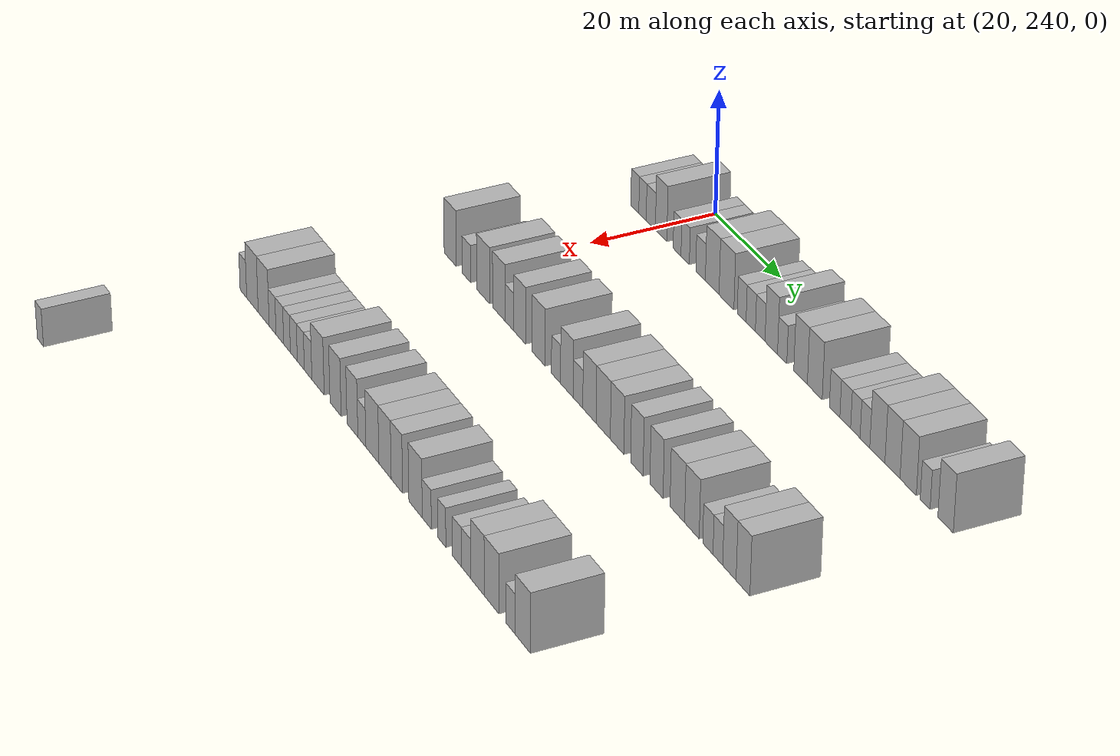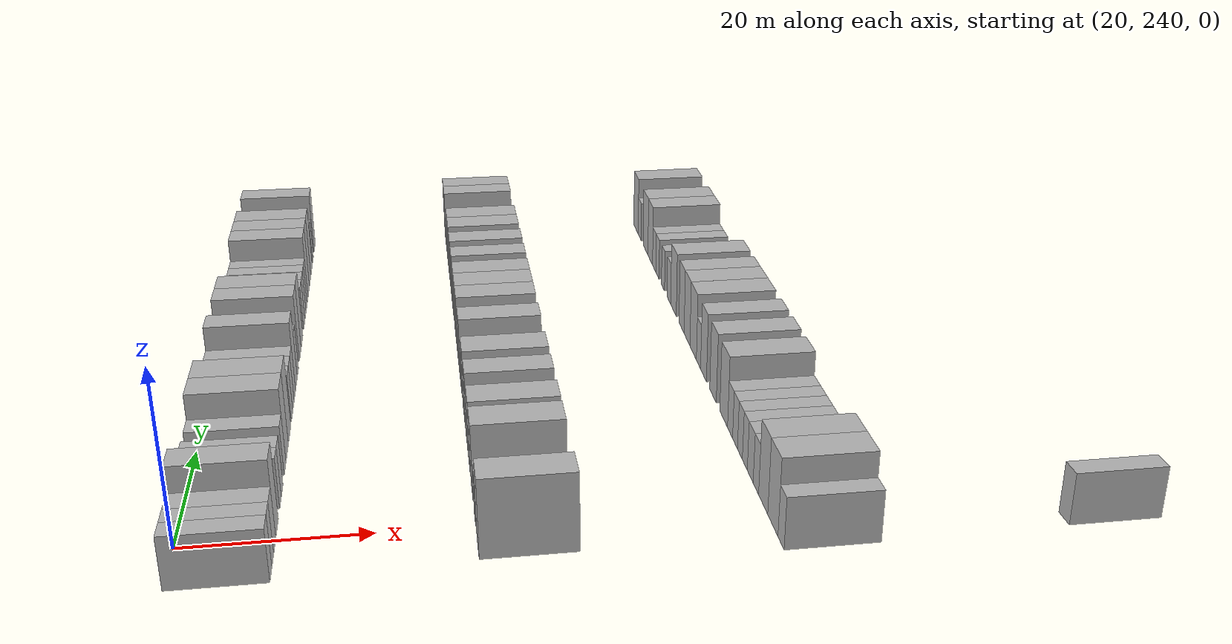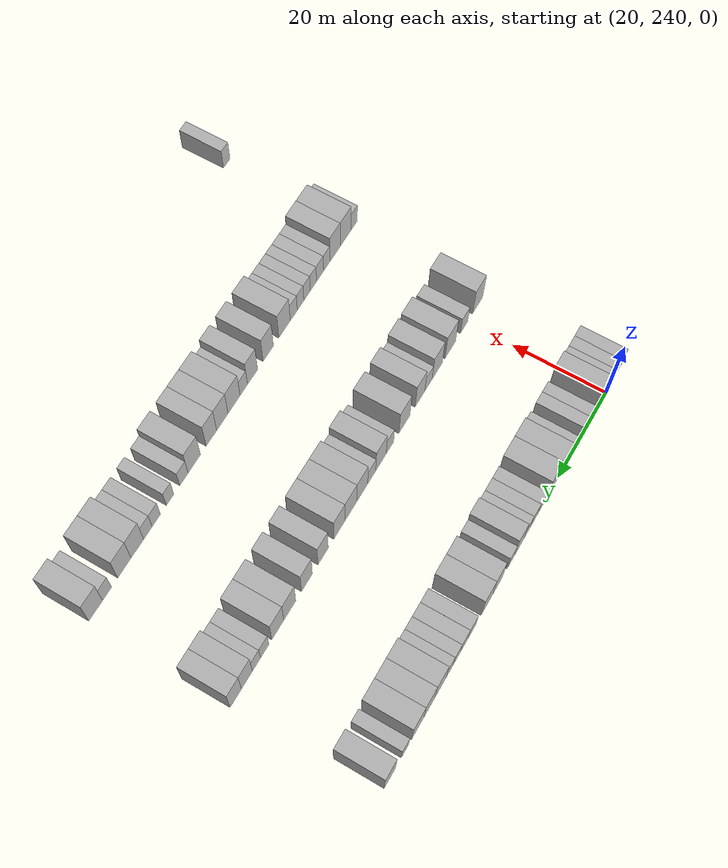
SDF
<sdf version="1.6">
 <world name="default">
  <model name="building_173">
   <static>1</static>
   <pose>25.0000 233.9214 0 0.000000 0.000000 0.000000</pose>
   <link name="link">
    <pose>0 0 3.00 0 0 0</pose>
    <collision name="collision"><geometry><box><size>10.0000 2.5750 6.0000</size></box></geometry></collision>
    <visual name="visual">
     <cast_shadows>0</cast_shadows>
     <geometry><box><size>10.0000 2.5750 6.0000</size></box></geometry>
     <material>
      <script>
       <uri>model://HANNAS_wall/materials/scripts</uri>
       <uri>model://HANNAS_wall/materials/textures</uri>
       <name>vrc/HANNAS_wall</name>
      </script>
     </material>
    </visual>
   </link>
  </model>
  <model name="building_174">
   <static>1</static>
   <pose>25.0000 236.4118 0 0.000000 0.000000 0.000000</pose>
   <link name="link">
    <pose>0 0 3.00 0 0 0</pose>
    <collision name="collision"><geometry><box><size>10.0000 2.4059 6.0000</size></box></geometry></collision>
    <visual name="visual">
     <cast_shadows>0</cast_shadows>
     <geometry><box><size>10.0000 2.4059 6.0000</size></box></geometry>
     <material>
      <script>
       <uri>model://HANNAS_wall/materials/scripts</uri>
       <uri>model://HANNAS_wall/materials/textures</uri>
       <name>vrc/HANNAS_wall</name>
      </script>
     </material>
    </visual>
   </link>
  </model>
  <model name="building_175">
   <static>1</static>
   <pose>25.0000 239.0922 0 0.000000 0.000000 0.000000</pose>
   <link name="link">
    <pose>0 0 3.00 0 0 0</pose>
    <collision name="collision"><geometry><box><size>10.0000 2.9547 6.0000</size></box></geometry></collision>
    <visual name="visual">
     <cast_shadows>0</cast_shadows>
     <geometry><box><size>10.0000 2.9547 6.0000</size></box></geometry>
     <material>
      <script>
       <uri>model://HANNAS_wall/materials/scripts</uri>
       <uri>model://HANNAS_wall/materials/textures</uri>
       <name>vrc/HANNAS_wall</name>
      </script>
     </material>
    </visual>
   </link>
  </model>
  <model name="building_176">
   <static>1</static>
   <pose>25.0000 242.3897 0 0.000000 0.000000 0.000000</pose>
   <link name="link">
    <pose>0 0 4.50 0 0 0</pose>
    <collision name="collision"><geometry><box><size>10.0000 3.6404 9.0000</size></box></geometry></collision>
    <visual name="visual">
     <cast_shadows>0</cast_shadows>
     <geometry><box><size>10.0000 3.6404 9.0000</size></box></geometry>
     <material>
      <script>
       <uri>model://HANNAS_wall/materials/scripts</uri>
       <uri>model://HANNAS_wall/materials/textures</uri>
       <name>vrc/HANNAS_wall</name>
      </script>
     </material>
    </visual>
   </link>
  </model>
  <model name="building_177">
   <static>1</static>
   <pose>25.0000 247.4412 0 0.000000 0.000000 0.000000</pose>
   <link name="link">
    <pose>0 0 3.00 0 0 0</pose>
    <collision name="collision"><geometry><box><size>10.0000 2.4626 6.0000</size></box></geometry></collision>
    <visual name="visual">
     <cast_shadows>0</cast_shadows>
     <geometry><box><size>10.0000 2.4626 6.0000</size></box></geometry>
     <material>
      <script>
       <uri>model://HANNAS_wall/materials/scripts</uri>
       <uri>model://HANNAS_wall/materials/textures</uri>
       <name>vrc/HANNAS_wall</name>
      </script>
     </material>
    </visual>
   </link>
  </model>
  <model name="building_178">
   <static>1</static>
   <pose>25.0000 249.9793 0 0.000000 0.000000 0.000000</pose>
   <link name="link">
    <pose>0 0 3.00 0 0 0</pose>
    <collision name="collision"><geometry><box><size>10.0000 2.6136 6.0000</size></box></geometry></collision>
    <visual name="visual">
     <cast_shadows>0</cast_shadows>
     <geometry><box><size>10.0000 2.6136 6.0000</size></box></geometry>
     <material>
      <script>
       <uri>model://HANNAS_wall/materials/scripts</uri>
       <uri>model://HANNAS_wall/materials/textures</uri>
       <name>vrc/HANNAS_wall</name>
      </script>
     </material>
    </visual>
   </link>
  </model>
  <model name="building_179">
   <static>1</static>
   <pose>25.0000 254.7602 0 0.000000 0.000000 0.000000</pose>
   <link name="link">
    <pose>0 0 3.00 0 0 0</pose>
    <collision name="collision"><geometry><box><size>10.0000 2.9482 6.0000</size></box></geometry></collision>
    <visual name="visual">
     <cast_shadows>0</cast_shadows>
     <geometry><box><size>10.0000 2.9482 6.0000</size></box></geometry>
     <material>
      <script>
       <uri>model://HANNAS_wall/materials/scripts</uri>
       <uri>model://HANNAS_wall/materials/textures</uri>
       <name>vrc/HANNAS_wall</name>
      </script>
     </material>
    </visual>
   </link>
  </model>
  <model name="building_180">
   <static>1</static>
   <pose>25.0000 258.3312 0 0.000000 0.000000 0.000000</pose>
   <link name="link">
    <pose>0 0 4.50 0 0 0</pose>
    <collision name="collision"><geometry><box><size>10.0000 4.1937 9.0000</size></box></geometry></collision>
    <visual name="visual">
     <cast_shadows>0</cast_shadows>
     <geometry><box><size>10.0000 4.1937 9.0000</size></box></geometry>
     <material>
      <script>
       <uri>model://HANNAS_wall/materials/scripts</uri>
       <uri>model://HANNAS_wall/materials/textures</uri>
       <name>vrc/HANNAS_wall</name>
      </script>
     </material>
    </visual>
   </link>
  </model>
  <model name="building_181">
   <static>1</static>
   <pose>25.0000 262.6746 0 0.000000 0.000000 0.000000</pose>
   <link name="link">
    <pose>0 0 4.50 0 0 0</pose>
    <collision name="collision"><geometry><box><size>10.0000 4.4932 9.0000</size></box></geometry></collision>
    <visual name="visual">
     <cast_shadows>0</cast_shadows>
     <geometry><box><size>10.0000 4.4932 9.0000</size></box></geometry>
     <material>
      <script>
       <uri>model://HANNAS_wall/materials/scripts</uri>
       <uri>model://HANNAS_wall/materials/textures</uri>
       <name>vrc/HANNAS_wall</name>
      </script>
     </material>
    </visual>
   </link>
  </model>
  <model name="building_182">
   <static>1</static>
   <pose>25.0000 267.2410 0 0.000000 0.000000 0.000000</pose>
   <link name="link">
    <pose>0 0 3.00 0 0 0</pose>
    <collision name="collision"><geometry><box><size>10.0000 2.6397 6.0000</size></box></geometry></collision>
    <visual name="visual">
     <cast_shadows>0</cast_shadows>
     <geometry><box><size>10.0000 2.6397 6.0000</size></box></geometry>
     <material>
      <script>
       <uri>model://HANNAS_wall/materials/scripts</uri>
       <uri>model://HANNAS_wall/materials/textures</uri>
       <name>vrc/HANNAS_wall</name>
      </script>
     </material>
    </visual>
   </link>
  </model>
  <model name="building_183">
   <static>1</static>
   <pose>25.0000 269.9422 0 0.000000 0.000000 0.000000</pose>
   <link name="link">
    <pose>0 0 3.00 0 0 0</pose>
    <collision name="collision"><geometry><box><size>10.0000 2.7627 6.0000</size></box></geometry></collision>
    <visual name="visual">
     <cast_shadows>0</cast_shadows>
     <geometry><box><size>10.0000 2.7627 6.0000</size></box></geometry>
     <material>
      <script>
       <uri>model://HANNAS_wall/materials/scripts</uri>
       <uri>model://HANNAS_wall/materials/textures</uri>
       <name>vrc/HANNAS_wall</name>
      </script>
     </material>
    </visual>
   </link>
  </model>
  <model name="building_184">
   <static>1</static>
   <pose>25.0000 272.7430 0 0.000000 0.000000 0.000000</pose>
   <link name="link">
    <pose>0 0 3.00 0 0 0</pose>
    <collision name="collision"><geometry><box><size>10.0000 2.8389 6.0000</size></box></geometry></collision>
    <visual name="visual">
     <cast_shadows>0</cast_shadows>
     <geometry><box><size>10.0000 2.8389 6.0000</size></box></geometry>
     <material>
      <script>
       <uri>model://HANNAS_wall/materials/scripts</uri>
       <uri>model://HANNAS_wall/materials/textures</uri>
       <name>vrc/HANNAS_wall</name>
      </script>
     </material>
    </visual>
   </link>
  </model>
  <model name="building_185">
   <static>1</static>
   <pose>25.0000 275.9863 0 0.000000 0.000000 0.000000</pose>
   <link name="link">
    <pose>0 0 4.50 0 0 0</pose>
    <collision name="collision"><geometry><box><size>10.0000 3.6476 9.0000</size></box></geometry></collision>
    <visual name="visual">
     <cast_shadows>0</cast_shadows>
     <geometry><box><size>10.0000 3.6476 9.0000</size></box></geometry>
     <material>
      <script>
       <uri>model://HANNAS_wall/materials/scripts</uri>
       <uri>model://HANNAS_wall/materials/textures</uri>
       <name>vrc/HANNAS_wall</name>
      </script>
     </material>
    </visual>
   </link>
  </model>
  <model name="building_186">
   <static>1</static>
   <pose>25.0000 279.1601 0 0.000000 0.000000 0.000000</pose>
   <link name="link">
    <pose>0 0 3.00 0 0 0</pose>
    <collision name="collision"><geometry><box><size>10.0000 2.7000 6.0000</size></box></geometry></collision>
    <visual name="visual">
     <cast_shadows>0</cast_shadows>
     <geometry><box><size>10.0000 2.7000 6.0000</size></box></geometry>
     <material>
      <script>
       <uri>model://HANNAS_wall/materials/scripts</uri>
       <uri>model://HANNAS_wall/materials/textures</uri>
       <name>vrc/HANNAS_wall</name>
      </script>
     </material>
    </visual>
   </link>
  </model>
  <model name="building_187">
   <static>1</static>
   <pose>25.0000 284.4467 0 0.000000 0.000000 0.000000</pose>
   <link name="link">
    <pose>0 0 4.50 0 0 0</pose>
    <collision name="collision"><geometry><box><size>10.0000 3.8732 9.0000</size></box></geometry></collision>
    <visual name="visual">
     <cast_shadows>0</cast_shadows>
     <geometry><box><size>10.0000 3.8732 9.0000</size></box></geometry>
     <material>
      <script>
       <uri>model://HANNAS_wall/materials/scripts</uri>
       <uri>model://HANNAS_wall/materials/textures</uri>
       <name>vrc/HANNAS_wall</name>
      </script>
     </material>
    </visual>
   </link>
  </model>
  <model name="building_188">
   <static>1</static>
   <pose>25.0000 288.4853 0 0.000000 0.000000 0.000000</pose>
   <link name="link">
    <pose>0 0 4.50 0 0 0</pose>
    <collision name="collision"><geometry><box><size>10.0000 4.2039 9.0000</size></box></geometry></collision>
    <visual name="visual">
     <cast_shadows>0</cast_shadows>
     <geometry><box><size>10.0000 4.2039 9.0000</size></box></geometry>
     <material>
      <script>
       <uri>model://HANNAS_wall/materials/scripts</uri>
       <uri>model://HANNAS_wall/materials/textures</uri>
       <name>vrc/HANNAS_wall</name>
      </script>
     </material>
    </visual>
   </link>
  </model>
  <model name="building_189">
   <static>1</static>
   <pose>25.0000 294.0512 0 0.000000 0.000000 0.000000</pose>
   <link name="link">
    <pose>0 0 3.00 0 0 0</pose>
    <collision name="collision"><geometry><box><size>10.0000 2.9280 6.0000</size></box></geometry></collision>
    <visual name="visual">
     <cast_shadows>0</cast_shadows>
     <geometry><box><size>10.0000 2.9280 6.0000</size></box></geometry>
     <material>
      <script>
       <uri>model://HANNAS_wall/materials/scripts</uri>
       <uri>model://HANNAS_wall/materials/textures</uri>
       <name>vrc/HANNAS_wall</name>
      </script>
     </material>
    </visual>
   </link>
  </model>
  <model name="building_190">
   <static>1</static>
   <pose>25.0000 296.9985 0 0.000000 0.000000 0.000000</pose>
   <link name="link">
    <pose>0 0 3.00 0 0 0</pose>
    <collision name="collision"><geometry><box><size>10.0000 2.9665 6.0000</size></box></geometry></collision>
    <visual name="visual">
     <cast_shadows>0</cast_shadows>
     <geometry><box><size>10.0000 2.9665 6.0000</size></box></geometry>
     <material>
      <script>
       <uri>model://HANNAS_wall/materials/scripts</uri>
       <uri>model://HANNAS_wall/materials/textures</uri>
       <name>vrc/HANNAS_wall</name>
      </script>
     </material>
    </visual>
   </link>
  </model>
  <model name="building_191">
   <static>1</static>
   <pose>25.0000 299.7755 0 0.000000 0.000000 0.000000</pose>
   <link name="link">
    <pose>0 0 3.00 0 0 0</pose>
    <collision name="collision"><geometry><box><size>10.0000 2.5875 6.0000</size></box></geometry></collision>
    <visual name="visual">
     <cast_shadows>0</cast_shadows>
     <geometry><box><size>10.0000 2.5875 6.0000</size></box></geometry>
     <material>
      <script>
       <uri>model://HANNAS_wall/materials/scripts</uri>
       <uri>model://HANNAS_wall/materials/textures</uri>
       <name>vrc/HANNAS_wall</name>
      </script>
     </material>
    </visual>
   </link>
  </model>
  <model name="building_192">
   <static>1</static>
   <pose>25.0000 302.3910 0 0.000000 0.000000 0.000000</pose>
   <link name="link">
    <pose>0 0 3.00 0 0 0</pose>
    <collision name="collision"><geometry><box><size>10.0000 2.6434 6.0000</size></box></geometry></collision>
    <visual name="visual">
     <cast_shadows>0</cast_shadows>
     <geometry><box><size>10.0000 2.6434 6.0000</size></box></geometry>
     <material>
      <script>
       <uri>model://HANNAS_wall/materials/scripts</uri>
       <uri>model://HANNAS_wall/materials/textures</uri>
       <name>vrc/HANNAS_wall</name>
      </script>
     </material>
    </visual>
   </link>
  </model>
  <model name="building_193">
   <static>1</static>
   <pose>25.0000 305.7496 0 0.000000 0.000000 0.000000</pose>
   <link name="link">
    <pose>0 0 4.50 0 0 0</pose>
    <collision name="collision"><geometry><box><size>10.0000 4.0739 9.0000</size></box></geometry></collision>
    <visual name="visual">
     <cast_shadows>0</cast_shadows>
     <geometry><box><size>10.0000 4.0739 9.0000</size></box></geometry>
     <material>
      <script>
       <uri>model://HANNAS_wall/materials/scripts</uri>
       <uri>model://HANNAS_wall/materials/textures</uri>
       <name>vrc/HANNAS_wall</name>
      </script>
     </material>
    </visual>
   </link>
  </model>
  <model name="building_194">
   <static>1</static>
   <pose>25.0000 309.8041 0 0.000000 0.000000 0.000000</pose>
   <link name="link">
    <pose>0 0 4.50 0 0 0</pose>
    <collision name="collision"><geometry><box><size>10.0000 4.0350 9.0000</size></box></geometry></collision>
    <visual name="visual">
     <cast_shadows>0</cast_shadows>
     <geometry><box><size>10.0000 4.0350 9.0000</size></box></geometry>
     <material>
      <script>
       <uri>model://HANNAS_wall/materials/scripts</uri>
       <uri>model://HANNAS_wall/materials/textures</uri>
       <name>vrc/HANNAS_wall</name>
      </script>
     </material>
    </visual>
   </link>
  </model>
  <model name="building_195">
   <static>1</static>
   <pose>25.0000 313.9695 0 0.000000 0.000000 0.000000</pose>
   <link name="link">
    <pose>0 0 4.50 0 0 0</pose>
    <collision name="collision"><geometry><box><size>10.0000 4.2958 9.0000</size></box></geometry></collision>
    <visual name="visual">
     <cast_shadows>0</cast_shadows>
     <geometry><box><size>10.0000 4.2958 9.0000</size></box></geometry>
     <material>
      <script>
       <uri>model://HANNAS_wall/materials/scripts</uri>
       <uri>model://HANNAS_wall/materials/textures</uri>
       <name>vrc/HANNAS_wall</name>
      </script>
     </material>
    </visual>
   </link>
  </model>
  <model name="building_196">
   <static>1</static>
   <pose>25.0000 318.4074 0 0.000000 0.000000 0.000000</pose>
   <link name="link">
    <pose>0 0 3.00 0 0 0</pose>
    <collision name="collision"><geometry><box><size>10.0000 2.5799 6.0000</size></box></geometry></collision>
    <visual name="visual">
     <cast_shadows>0</cast_shadows>
     <geometry><box><size>10.0000 2.5799 6.0000</size></box></geometry>
     <material>
      <script>
       <uri>model://HANNAS_wall/materials/scripts</uri>
       <uri>model://HANNAS_wall/materials/textures</uri>
       <name>vrc/HANNAS_wall</name>
      </script>
     </material>
    </visual>
   </link>
  </model>
  <model name="building_197">
   <static>1</static>
   <pose>25.0000 323.6763 0 0.000000 0.000000 0.000000</pose>
   <link name="link">
    <pose>0 0 4.50 0 0 0</pose>
    <collision name="collision"><geometry><box><size>10.0000 3.9580 9.0000</size></box></geometry></collision>
    <visual name="visual">
     <cast_shadows>0</cast_shadows>
     <geometry><box><size>10.0000 3.9580 9.0000</size></box></geometry>
     <material>
      <script>
       <uri>model://HANNAS_wall/materials/scripts</uri>
       <uri>model://HANNAS_wall/materials/textures</uri>
       <name>vrc/HANNAS_wall</name>
      </script>
     </material>
    </visual>
   </link>
  </model>
  <model name="building_398">
   <static>1</static>
   <pose>55.0000 235.8316 0 0.000000 0.000000 0.000000</pose>
   <link name="link">
    <pose>0 0 4.50 0 0 0</pose>
    <collision name="collision"><geometry><box><size>10.0000 4.1496 9.0000</size></box></geometry></collision>
    <visual name="visual">
     <cast_shadows>0</cast_shadows>
     <geometry><box><size>10.0000 4.1496 9.0000</size></box></geometry>
     <material>
      <script>
       <uri>model://HANNAS_wall/materials/scripts</uri>
       <uri>model://HANNAS_wall/materials/textures</uri>
       <name>vrc/HANNAS_wall</name>
      </script>
     </material>
    </visual>
   </link>
  </model>
  <model name="building_399">
   <static>1</static>
   <pose>55.0000 241.3835 0 0.000000 0.000000 0.000000</pose>
   <link name="link">
    <pose>0 0 3.00 0 0 0</pose>
    <collision name="collision"><geometry><box><size>10.0000 2.9542 6.0000</size></box></geometry></collision>
    <visual name="visual">
     <cast_shadows>0</cast_shadows>
     <geometry><box><size>10.0000 2.9542 6.0000</size></box></geometry>
     <material>
      <script>
       <uri>model://HANNAS_wall/materials/scripts</uri>
       <uri>model://HANNAS_wall/materials/textures</uri>
       <name>vrc/HANNAS_wall</name>
      </script>
     </material>
    </visual>
   </link>
  </model>
  <model name="building_400">
   <static>1</static>
   <pose>55.0000 247.0343 0 0.000000 0.000000 0.000000</pose>
   <link name="link">
    <pose>0 0 4.50 0 0 0</pose>
    <collision name="collision"><geometry><box><size>10.0000 4.3474 9.0000</size></box></geometry></collision>
    <visual name="visual">
     <cast_shadows>0</cast_shadows>
     <geometry><box><size>10.0000 4.3474 9.0000</size></box></geometry>
     <material>
      <script>
       <uri>model://HANNAS_wall/materials/scripts</uri>
       <uri>model://HANNAS_wall/materials/textures</uri>
       <name>vrc/HANNAS_wall</name>
      </script>
     </material>
    </visual>
   </link>
  </model>
  <model name="building_401">
   <static>1</static>
   <pose>55.0000 252.2536 0 0.000000 0.000000 0.000000</pose>
   <link name="link">
    <pose>0 0 4.50 0 0 0</pose>
    <collision name="collision"><geometry><box><size>10.0000 4.0912 9.0000</size></box></geometry></collision>
    <visual name="visual">
     <cast_shadows>0</cast_shadows>
     <geometry><box><size>10.0000 4.0912 9.0000</size></box></geometry>
     <material>
      <script>
       <uri>model://HANNAS_wall/materials/scripts</uri>
       <uri>model://HANNAS_wall/materials/textures</uri>
       <name>vrc/HANNAS_wall</name>
      </script>
     </material>
    </visual>
   </link>
  </model>
  <model name="building_402">
   <static>1</static>
   <pose>55.0000 255.7630 0 0.000000 0.000000 0.000000</pose>
   <link name="link">
    <pose>0 0 3.00 0 0 0</pose>
    <collision name="collision"><geometry><box><size>10.0000 2.9276 6.0000</size></box></geometry></collision>
    <visual name="visual">
     <cast_shadows>0</cast_shadows>
     <geometry><box><size>10.0000 2.9276 6.0000</size></box></geometry>
     <material>
      <script>
       <uri>model://HANNAS_wall/materials/scripts</uri>
       <uri>model://HANNAS_wall/materials/textures</uri>
       <name>vrc/HANNAS_wall</name>
      </script>
     </material>
    </visual>
   </link>
  </model>
  <model name="building_403">
   <static>1</static>
   <pose>55.0000 259.1118 0 0.000000 0.000000 0.000000</pose>
   <link name="link">
    <pose>0 0 4.50 0 0 0</pose>
    <collision name="collision"><geometry><box><size>10.0000 3.7700 9.0000</size></box></geometry></collision>
    <visual name="visual">
     <cast_shadows>0</cast_shadows>
     <geometry><box><size>10.0000 3.7700 9.0000</size></box></geometry>
     <material>
      <script>
       <uri>model://HANNAS_wall/materials/scripts</uri>
       <uri>model://HANNAS_wall/materials/textures</uri>
       <name>vrc/HANNAS_wall</name>
      </script>
     </material>
    </visual>
   </link>
  </model>
  <model name="building_404">
   <static>1</static>
   <pose>55.0000 265.1420 0 0.000000 0.000000 0.000000</pose>
   <link name="link">
    <pose>0 0 4.50 0 0 0</pose>
    <collision name="collision"><geometry><box><size>10.0000 4.2905 9.0000</size></box></geometry></collision>
    <visual name="visual">
     <cast_shadows>0</cast_shadows>
     <geometry><box><size>10.0000 4.2905 9.0000</size></box></geometry>
     <material>
      <script>
       <uri>model://HANNAS_wall/materials/scripts</uri>
       <uri>model://HANNAS_wall/materials/textures</uri>
       <name>vrc/HANNAS_wall</name>
      </script>
     </material>
    </visual>
   </link>
  </model>
  <model name="building_405">
   <static>1</static>
   <pose>55.0000 270.7178 0 0.000000 0.000000 0.000000</pose>
   <link name="link">
    <pose>0 0 3.00 0 0 0</pose>
    <collision name="collision"><geometry><box><size>10.0000 2.8611 6.0000</size></box></geometry></collision>
    <visual name="visual">
     <cast_shadows>0</cast_shadows>
     <geometry><box><size>10.0000 2.8611 6.0000</size></box></geometry>
     <material>
      <script>
       <uri>model://HANNAS_wall/materials/scripts</uri>
       <uri>model://HANNAS_wall/materials/textures</uri>
       <name>vrc/HANNAS_wall</name>
      </script>
     </material>
    </visual>
   </link>
  </model>
  <model name="building_406">
   <static>1</static>
   <pose>55.0000 274.1213 0 0.000000 0.000000 0.000000</pose>
   <link name="link">
    <pose>0 0 4.50 0 0 0</pose>
    <collision name="collision"><geometry><box><size>10.0000 3.9459 9.0000</size></box></geometry></collision>
    <visual name="visual">
     <cast_shadows>0</cast_shadows>
     <geometry><box><size>10.0000 3.9459 9.0000</size></box></geometry>
     <material>
      <script>
       <uri>model://HANNAS_wall/materials/scripts</uri>
       <uri>model://HANNAS_wall/materials/textures</uri>
       <name>vrc/HANNAS_wall</name>
      </script>
     </material>
    </visual>
   </link>
  </model>
  <model name="building_407">
   <static>1</static>
   <pose>55.0000 277.5830 0 0.000000 0.000000 0.000000</pose>
   <link name="link">
    <pose>0 0 3.00 0 0 0</pose>
    <collision name="collision"><geometry><box><size>10.0000 2.9775 6.0000</size></box></geometry></collision>
    <visual name="visual">
     <cast_shadows>0</cast_shadows>
     <geometry><box><size>10.0000 2.9775 6.0000</size></box></geometry>
     <material>
      <script>
       <uri>model://HANNAS_wall/materials/scripts</uri>
       <uri>model://HANNAS_wall/materials/textures</uri>
       <name>vrc/HANNAS_wall</name>
      </script>
     </material>
    </visual>
   </link>
  </model>
  <model name="building_408">
   <static>1</static>
   <pose>55.0000 281.1152 0 0.000000 0.000000 0.000000</pose>
   <link name="link">
    <pose>0 0 4.50 0 0 0</pose>
    <collision name="collision"><geometry><box><size>10.0000 4.0869 9.0000</size></box></geometry></collision>
    <visual name="visual">
     <cast_shadows>0</cast_shadows>
     <geometry><box><size>10.0000 4.0869 9.0000</size></box></geometry>
     <material>
      <script>
       <uri>model://HANNAS_wall/materials/scripts</uri>
       <uri>model://HANNAS_wall/materials/textures</uri>
       <name>vrc/HANNAS_wall</name>
      </script>
     </material>
    </visual>
   </link>
  </model>
  <model name="building_409">
   <static>1</static>
   <pose>55.0000 285.3110 0 0.000000 0.000000 0.000000</pose>
   <link name="link">
    <pose>0 0 4.50 0 0 0</pose>
    <collision name="collision"><geometry><box><size>10.0000 4.3048 9.0000</size></box></geometry></collision>
    <visual name="visual">
     <cast_shadows>0</cast_shadows>
     <geometry><box><size>10.0000 4.3048 9.0000</size></box></geometry>
     <material>
      <script>
       <uri>model://HANNAS_wall/materials/scripts</uri>
       <uri>model://HANNAS_wall/materials/textures</uri>
       <name>vrc/HANNAS_wall</name>
      </script>
     </material>
    </visual>
   </link>
  </model>
  <model name="building_410">
   <static>1</static>
   <pose>55.0000 289.4895 0 0.000000 0.000000 0.000000</pose>
   <link name="link">
    <pose>0 0 4.50 0 0 0</pose>
    <collision name="collision"><geometry><box><size>10.0000 4.0522 9.0000</size></box></geometry></collision>
    <visual name="visual">
     <cast_shadows>0</cast_shadows>
     <geometry><box><size>10.0000 4.0522 9.0000</size></box></geometry>
     <material>
      <script>
       <uri>model://HANNAS_wall/materials/scripts</uri>
       <uri>model://HANNAS_wall/materials/textures</uri>
       <name>vrc/HANNAS_wall</name>
      </script>
     </material>
    </visual>
   </link>
  </model>
  <model name="building_411">
   <static>1</static>
   <pose>55.0000 295.3524 0 0.000000 0.000000 0.000000</pose>
   <link name="link">
    <pose>0 0 4.50 0 0 0</pose>
    <collision name="collision"><geometry><box><size>10.0000 3.6736 9.0000</size></box></geometry></collision>
    <visual name="visual">
     <cast_shadows>0</cast_shadows>
     <geometry><box><size>10.0000 3.6736 9.0000</size></box></geometry>
     <material>
      <script>
       <uri>model://HANNAS_wall/materials/scripts</uri>
       <uri>model://HANNAS_wall/materials/textures</uri>
       <name>vrc/HANNAS_wall</name>
      </script>
     </material>
    </visual>
   </link>
  </model>
  <model name="building_412">
   <static>1</static>
   <pose>55.0000 301.0931 0 0.000000 0.000000 0.000000</pose>
   <link name="link">
    <pose>0 0 4.50 0 0 0</pose>
    <collision name="collision"><geometry><box><size>10.0000 3.8077 9.0000</size></box></geometry></collision>
    <visual name="visual">
     <cast_shadows>0</cast_shadows>
     <geometry><box><size>10.0000 3.8077 9.0000</size></box></geometry>
     <material>
      <script>
       <uri>model://HANNAS_wall/materials/scripts</uri>
       <uri>model://HANNAS_wall/materials/textures</uri>
       <name>vrc/HANNAS_wall</name>
      </script>
     </material>
    </visual>
   </link>
  </model>
  <model name="building_413">
   <static>1</static>
   <pose>55.0000 307.0705 0 0.000000 0.000000 0.000000</pose>
   <link name="link">
    <pose>0 0 4.50 0 0 0</pose>
    <collision name="collision"><geometry><box><size>10.0000 4.1471 9.0000</size></box></geometry></collision>
    <visual name="visual">
     <cast_shadows>0</cast_shadows>
     <geometry><box><size>10.0000 4.1471 9.0000</size></box></geometry>
     <material>
      <script>
       <uri>model://HANNAS_wall/materials/scripts</uri>
       <uri>model://HANNAS_wall/materials/textures</uri>
       <name>vrc/HANNAS_wall</name>
      </script>
     </material>
    </visual>
   </link>
  </model>
  <model name="building_414">
   <static>1</static>
   <pose>55.0000 311.1951 0 0.000000 0.000000 0.000000</pose>
   <link name="link">
    <pose>0 0 4.50 0 0 0</pose>
    <collision name="collision"><geometry><box><size>10.0000 4.1022 9.0000</size></box></geometry></collision>
    <visual name="visual">
     <cast_shadows>0</cast_shadows>
     <geometry><box><size>10.0000 4.1022 9.0000</size></box></geometry>
     <material>
      <script>
       <uri>model://HANNAS_wall/materials/scripts</uri>
       <uri>model://HANNAS_wall/materials/textures</uri>
       <name>vrc/HANNAS_wall</name>
      </script>
     </material>
    </visual>
   </link>
  </model>
  <model name="building_415">
   <static>1</static>
   <pose>55.0000 315.6761 0 0.000000 0.000000 0.000000</pose>
   <link name="link">
    <pose>0 0 3.00 0 0 0</pose>
    <collision name="collision"><geometry><box><size>10.0000 2.8598 6.0000</size></box></geometry></collision>
    <visual name="visual">
     <cast_shadows>0</cast_shadows>
     <geometry><box><size>10.0000 2.8598 6.0000</size></box></geometry>
     <material>
      <script>
       <uri>model://HANNAS_wall/materials/scripts</uri>
       <uri>model://HANNAS_wall/materials/textures</uri>
       <name>vrc/HANNAS_wall</name>
      </script>
     </material>
    </visual>
   </link>
  </model>
  <model name="building_416">
   <static>1</static>
   <pose>55.0000 318.4408 0 0.000000 0.000000 0.000000</pose>
   <link name="link">
    <pose>0 0 3.00 0 0 0</pose>
    <collision name="collision"><geometry><box><size>10.0000 2.6696 6.0000</size></box></geometry></collision>
    <visual name="visual">
     <cast_shadows>0</cast_shadows>
     <geometry><box><size>10.0000 2.6696 6.0000</size></box></geometry>
     <material>
      <script>
       <uri>model://HANNAS_wall/materials/scripts</uri>
       <uri>model://HANNAS_wall/materials/textures</uri>
       <name>vrc/HANNAS_wall</name>
      </script>
     </material>
    </visual>
   </link>
  </model>
  <model name="building_417">
   <static>1</static>
   <pose>55.0000 321.6118 0 0.000000 0.000000 0.000000</pose>
   <link name="link">
    <pose>0 0 4.50 0 0 0</pose>
    <collision name="collision"><geometry><box><size>10.0000 3.6724 9.0000</size></box></geometry></collision>
    <visual name="visual">
     <cast_shadows>0</cast_shadows>
     <geometry><box><size>10.0000 3.6724 9.0000</size></box></geometry>
     <material>
      <script>
       <uri>model://HANNAS_wall/materials/scripts</uri>
       <uri>model://HANNAS_wall/materials/textures</uri>
       <name>vrc/HANNAS_wall</name>
      </script>
     </material>
    </visual>
   </link>
  </model>
  <model name="building_418">
   <static>1</static>
   <pose>55.0000 325.3156 0 0.000000 0.000000 0.000000</pose>
   <link name="link">
    <pose>0 0 4.50 0 0 0</pose>
    <collision name="collision"><geometry><box><size>10.0000 3.7352 9.0000</size></box></geometry></collision>
    <visual name="visual">
     <cast_shadows>0</cast_shadows>
     <geometry><box><size>10.0000 3.7352 9.0000</size></box></geometry>
     <material>
      <script>
       <uri>model://HANNAS_wall/materials/scripts</uri>
       <uri>model://HANNAS_wall/materials/textures</uri>
       <name>vrc/HANNAS_wall</name>
      </script>
     </material>
    </visual>
   </link>
  </model>
  <model name="building_625">
   <static>1</static>
   <pose>85.0000 232.3609 0 0.000000 0.000000 0.000000</pose>
   <link name="link">
    <pose>0 0 3.00 0 0 0</pose>
    <collision name="collision"><geometry><box><size>10.0000 2.4837 6.0000</size></box></geometry></collision>
    <visual name="visual">
     <cast_shadows>0</cast_shadows>
     <geometry><box><size>10.0000 2.4837 6.0000</size></box></geometry>
     <material>
      <script>
       <uri>model://HANNAS_wall/materials/scripts</uri>
       <uri>model://HANNAS_wall/materials/textures</uri>
       <name>vrc/HANNAS_wall</name>
      </script>
     </material>
    </visual>
   </link>
  </model>
  <model name="building_626">
   <static>1</static>
   <pose>85.0000 235.7366 0 0.000000 0.000000 0.000000</pose>
   <link name="link">
    <pose>0 0 4.50 0 0 0</pose>
    <collision name="collision"><geometry><box><size>10.0000 4.2677 9.0000</size></box></geometry></collision>
    <visual name="visual">
     <cast_shadows>0</cast_shadows>
     <geometry><box><size>10.0000 4.2677 9.0000</size></box></geometry>
     <material>
      <script>
       <uri>model://HANNAS_wall/materials/scripts</uri>
       <uri>model://HANNAS_wall/materials/textures</uri>
       <name>vrc/HANNAS_wall</name>
      </script>
     </material>
    </visual>
   </link>
  </model>
  <model name="building_627">
   <static>1</static>
   <pose>85.0000 239.8923 0 0.000000 0.000000 0.000000</pose>
   <link name="link">
    <pose>0 0 4.50 0 0 0</pose>
    <collision name="collision"><geometry><box><size>10.0000 4.0437 9.0000</size></box></geometry></collision>
    <visual name="visual">
     <cast_shadows>0</cast_shadows>
     <geometry><box><size>10.0000 4.0437 9.0000</size></box></geometry>
     <material>
      <script>
       <uri>model://HANNAS_wall/materials/scripts</uri>
       <uri>model://HANNAS_wall/materials/textures</uri>
       <name>vrc/HANNAS_wall</name>
      </script>
     </material>
    </visual>
   </link>
  </model>
  <model name="building_628">
   <static>1</static>
   <pose>85.0000 243.1599 0 0.000000 0.000000 0.000000</pose>
   <link name="link">
    <pose>0 0 3.00 0 0 0</pose>
    <collision name="collision"><geometry><box><size>10.0000 2.4914 6.0000</size></box></geometry></collision>
    <visual name="visual">
     <cast_shadows>0</cast_shadows>
     <geometry><box><size>10.0000 2.4914 6.0000</size></box></geometry>
     <material>
      <script>
       <uri>model://HANNAS_wall/materials/scripts</uri>
       <uri>model://HANNAS_wall/materials/textures</uri>
       <name>vrc/HANNAS_wall</name>
      </script>
     </material>
    </visual>
   </link>
  </model>
  <model name="building_629">
   <static>1</static>
   <pose>85.0000 245.7944 0 0.000000 0.000000 0.000000</pose>
   <link name="link">
    <pose>0 0 3.00 0 0 0</pose>
    <collision name="collision"><geometry><box><size>10.0000 2.7777 6.0000</size></box></geometry></collision>
    <visual name="visual">
     <cast_shadows>0</cast_shadows>
     <geometry><box><size>10.0000 2.7777 6.0000</size></box></geometry>
     <material>
      <script>
       <uri>model://HANNAS_wall/materials/scripts</uri>
       <uri>model://HANNAS_wall/materials/textures</uri>
       <name>vrc/HANNAS_wall</name>
      </script>
     </material>
    </visual>
   </link>
  </model>
  <model name="building_630">
   <static>1</static>
   <pose>85.0000 248.3847 0 0.000000 0.000000 0.000000</pose>
   <link name="link">
    <pose>0 0 3.00 0 0 0</pose>
    <collision name="collision"><geometry><box><size>10.0000 2.4028 6.0000</size></box></geometry></collision>
    <visual name="visual">
     <cast_shadows>0</cast_shadows>
     <geometry><box><size>10.0000 2.4028 6.0000</size></box></geometry>
     <material>
      <script>
       <uri>model://HANNAS_wall/materials/scripts</uri>
       <uri>model://HANNAS_wall/materials/textures</uri>
       <name>vrc/HANNAS_wall</name>
      </script>
     </material>
    </visual>
   </link>
  </model>
  <model name="building_631">
   <static>1</static>
   <pose>85.0000 250.8179 0 0.000000 0.000000 0.000000</pose>
   <link name="link">
    <pose>0 0 3.00 0 0 0</pose>
    <collision name="collision"><geometry><box><size>10.0000 2.4636 6.0000</size></box></geometry></collision>
    <visual name="visual">
     <cast_shadows>0</cast_shadows>
     <geometry><box><size>10.0000 2.4636 6.0000</size></box></geometry>
     <material>
      <script>
       <uri>model://HANNAS_wall/materials/scripts</uri>
       <uri>model://HANNAS_wall/materials/textures</uri>
       <name>vrc/HANNAS_wall</name>
      </script>
     </material>
    </visual>
   </link>
  </model>
  <model name="building_632">
   <static>1</static>
   <pose>85.0000 253.2997 0 0.000000 0.000000 0.000000</pose>
   <link name="link">
    <pose>0 0 3.00 0 0 0</pose>
    <collision name="collision"><geometry><box><size>10.0000 2.5000 6.0000</size></box></geometry></collision>
    <visual name="visual">
     <cast_shadows>0</cast_shadows>
     <geometry><box><size>10.0000 2.5000 6.0000</size></box></geometry>
     <material>
      <script>
       <uri>model://HANNAS_wall/materials/scripts</uri>
       <uri>model://HANNAS_wall/materials/textures</uri>
       <name>vrc/HANNAS_wall</name>
      </script>
     </material>
    </visual>
   </link>
  </model>
  <model name="building_633">
   <static>1</static>
   <pose>85.0000 255.8834 0 0.000000 0.000000 0.000000</pose>
   <link name="link">
    <pose>0 0 3.00 0 0 0</pose>
    <collision name="collision"><geometry><box><size>10.0000 2.6673 6.0000</size></box></geometry></collision>
    <visual name="visual">
     <cast_shadows>0</cast_shadows>
     <geometry><box><size>10.0000 2.6673 6.0000</size></box></geometry>
     <material>
      <script>
       <uri>model://HANNAS_wall/materials/scripts</uri>
       <uri>model://HANNAS_wall/materials/textures</uri>
       <name>vrc/HANNAS_wall</name>
      </script>
     </material>
    </visual>
   </link>
  </model>
  <model name="building_634">
   <static>1</static>
   <pose>85.0000 259.3697 0 0.000000 0.000000 0.000000</pose>
   <link name="link">
    <pose>0 0 4.50 0 0 0</pose>
    <collision name="collision"><geometry><box><size>10.0000 4.3054 9.0000</size></box></geometry></collision>
    <visual name="visual">
     <cast_shadows>0</cast_shadows>
     <geometry><box><size>10.0000 4.3054 9.0000</size></box></geometry>
     <material>
      <script>
       <uri>model://HANNAS_wall/materials/scripts</uri>
       <uri>model://HANNAS_wall/materials/textures</uri>
       <name>vrc/HANNAS_wall</name>
      </script>
     </material>
    </visual>
   </link>
  </model>
  <model name="building_635">
   <static>1</static>
   <pose>85.0000 265.4373 0 0.000000 0.000000 0.000000</pose>
   <link name="link">
    <pose>0 0 4.50 0 0 0</pose>
    <collision name="collision"><geometry><box><size>10.0000 3.8296 9.0000</size></box></geometry></collision>
    <visual name="visual">
     <cast_shadows>0</cast_shadows>
     <geometry><box><size>10.0000 3.8296 9.0000</size></box></geometry>
     <material>
      <script>
       <uri>model://HANNAS_wall/materials/scripts</uri>
       <uri>model://HANNAS_wall/materials/textures</uri>
       <name>vrc/HANNAS_wall</name>
      </script>
     </material>
    </visual>
   </link>
  </model>
  <model name="building_636">
   <static>1</static>
   <pose>85.0000 271.1869 0 0.000000 0.000000 0.000000</pose>
   <link name="link">
    <pose>0 0 4.50 0 0 0</pose>
    <collision name="collision"><geometry><box><size>10.0000 3.6697 9.0000</size></box></geometry></collision>
    <visual name="visual">
     <cast_shadows>0</cast_shadows>
     <geometry><box><size>10.0000 3.6697 9.0000</size></box></geometry>
     <material>
      <script>
       <uri>model://HANNAS_wall/materials/scripts</uri>
       <uri>model://HANNAS_wall/materials/textures</uri>
       <name>vrc/HANNAS_wall</name>
      </script>
     </material>
    </visual>
   </link>
  </model>
  <model name="building_637">
   <static>1</static>
   <pose>85.0000 274.3647 0 0.000000 0.000000 0.000000</pose>
   <link name="link">
    <pose>0 0 3.00 0 0 0</pose>
    <collision name="collision"><geometry><box><size>10.0000 2.6859 6.0000</size></box></geometry></collision>
    <visual name="visual">
     <cast_shadows>0</cast_shadows>
     <geometry><box><size>10.0000 2.6859 6.0000</size></box></geometry>
     <material>
      <script>
       <uri>model://HANNAS_wall/materials/scripts</uri>
       <uri>model://HANNAS_wall/materials/textures</uri>
       <name>vrc/HANNAS_wall</name>
      </script>
     </material>
    </visual>
   </link>
  </model>
  <model name="building_638">
   <static>1</static>
   <pose>85.0000 277.8720 0 0.000000 0.000000 0.000000</pose>
   <link name="link">
    <pose>0 0 4.50 0 0 0</pose>
    <collision name="collision"><geometry><box><size>10.0000 4.3289 9.0000</size></box></geometry></collision>
    <visual name="visual">
     <cast_shadows>0</cast_shadows>
     <geometry><box><size>10.0000 4.3289 9.0000</size></box></geometry>
     <material>
      <script>
       <uri>model://HANNAS_wall/materials/scripts</uri>
       <uri>model://HANNAS_wall/materials/textures</uri>
       <name>vrc/HANNAS_wall</name>
      </script>
     </material>
    </visual>
   </link>
  </model>
  <model name="building_639">
   <static>1</static>
   <pose>85.0000 282.0532 0 0.000000 0.000000 0.000000</pose>
   <link name="link">
    <pose>0 0 4.50 0 0 0</pose>
    <collision name="collision"><geometry><box><size>10.0000 4.0334 9.0000</size></box></geometry></collision>
    <visual name="visual">
     <cast_shadows>0</cast_shadows>
     <geometry><box><size>10.0000 4.0334 9.0000</size></box></geometry>
     <material>
      <script>
       <uri>model://HANNAS_wall/materials/scripts</uri>
       <uri>model://HANNAS_wall/materials/textures</uri>
       <name>vrc/HANNAS_wall</name>
      </script>
     </material>
    </visual>
   </link>
  </model>
  <model name="building_640">
   <static>1</static>
   <pose>85.0000 285.9241 0 0.000000 0.000000 0.000000</pose>
   <link name="link">
    <pose>0 0 4.50 0 0 0</pose>
    <collision name="collision"><geometry><box><size>10.0000 3.7085 9.0000</size></box></geometry></collision>
    <visual name="visual">
     <cast_shadows>0</cast_shadows>
     <geometry><box><size>10.0000 3.7085 9.0000</size></box></geometry>
     <material>
      <script>
       <uri>model://HANNAS_wall/materials/scripts</uri>
       <uri>model://HANNAS_wall/materials/textures</uri>
       <name>vrc/HANNAS_wall</name>
      </script>
     </material>
    </visual>
   </link>
  </model>
  <model name="building_641">
   <static>1</static>
   <pose>85.0000 291.9195 0 0.000000 0.000000 0.000000</pose>
   <link name="link">
    <pose>0 0 4.50 0 0 0</pose>
    <collision name="collision"><geometry><box><size>10.0000 4.2823 9.0000</size></box></geometry></collision>
    <visual name="visual">
     <cast_shadows>0</cast_shadows>
     <geometry><box><size>10.0000 4.2823 9.0000</size></box></geometry>
     <material>
      <script>
       <uri>model://HANNAS_wall/materials/scripts</uri>
       <uri>model://HANNAS_wall/materials/textures</uri>
       <name>vrc/HANNAS_wall</name>
      </script>
     </material>
    </visual>
   </link>
  </model>
  <model name="building_642">
   <static>1</static>
   <pose>85.0000 295.4960 0 0.000000 0.000000 0.000000</pose>
   <link name="link">
    <pose>0 0 3.00 0 0 0</pose>
    <collision name="collision"><geometry><box><size>10.0000 2.8707 6.0000</size></box></geometry></collision>
    <visual name="visual">
     <cast_shadows>0</cast_shadows>
     <geometry><box><size>10.0000 2.8707 6.0000</size></box></geometry>
     <material>
      <script>
       <uri>model://HANNAS_wall/materials/scripts</uri>
       <uri>model://HANNAS_wall/materials/textures</uri>
       <name>vrc/HANNAS_wall</name>
      </script>
     </material>
    </visual>
   </link>
  </model>
  <model name="building_643">
   <static>1</static>
   <pose>85.0000 300.1966 0 0.000000 0.000000 0.000000</pose>
   <link name="link">
    <pose>0 0 3.00 0 0 0</pose>
    <collision name="collision"><geometry><box><size>10.0000 2.5305 6.0000</size></box></geometry></collision>
    <visual name="visual">
     <cast_shadows>0</cast_shadows>
     <geometry><box><size>10.0000 2.5305 6.0000</size></box></geometry>
     <material>
      <script>
       <uri>model://HANNAS_wall/materials/scripts</uri>
       <uri>model://HANNAS_wall/materials/textures</uri>
       <name>vrc/HANNAS_wall</name>
      </script>
     </material>
    </visual>
   </link>
  </model>
  <model name="building_644">
   <static>1</static>
   <pose>85.0000 304.8471 0 0.000000 0.000000 0.000000</pose>
   <link name="link">
    <pose>0 0 3.00 0 0 0</pose>
    <collision name="collision"><geometry><box><size>10.0000 2.7706 6.0000</size></box></geometry></collision>
    <visual name="visual">
     <cast_shadows>0</cast_shadows>
     <geometry><box><size>10.0000 2.7706 6.0000</size></box></geometry>
     <material>
      <script>
       <uri>model://HANNAS_wall/materials/scripts</uri>
       <uri>model://HANNAS_wall/materials/textures</uri>
       <name>vrc/HANNAS_wall</name>
      </script>
     </material>
    </visual>
   </link>
  </model>
  <model name="building_645">
   <static>1</static>
   <pose>85.0000 307.6504 0 0.000000 0.000000 0.000000</pose>
   <link name="link">
    <pose>0 0 3.00 0 0 0</pose>
    <collision name="collision"><geometry><box><size>10.0000 2.8359 6.0000</size></box></geometry></collision>
    <visual name="visual">
     <cast_shadows>0</cast_shadows>
     <geometry><box><size>10.0000 2.8359 6.0000</size></box></geometry>
     <material>
      <script>
       <uri>model://HANNAS_wall/materials/scripts</uri>
       <uri>model://HANNAS_wall/materials/textures</uri>
       <name>vrc/HANNAS_wall</name>
      </script>
     </material>
    </visual>
   </link>
  </model>
  <model name="building_646">
   <static>1</static>
   <pose>85.0000 311.1306 0 0.000000 0.000000 0.000000</pose>
   <link name="link">
    <pose>0 0 4.50 0 0 0</pose>
    <collision name="collision"><geometry><box><size>10.0000 4.1244 9.0000</size></box></geometry></collision>
    <visual name="visual">
     <cast_shadows>0</cast_shadows>
     <geometry><box><size>10.0000 4.1244 9.0000</size></box></geometry>
     <material>
      <script>
       <uri>model://HANNAS_wall/materials/scripts</uri>
       <uri>model://HANNAS_wall/materials/textures</uri>
       <name>vrc/HANNAS_wall</name>
      </script>
     </material>
    </visual>
   </link>
  </model>
  <model name="building_647">
   <static>1</static>
   <pose>85.0000 315.3699 0 0.000000 0.000000 0.000000</pose>
   <link name="link">
    <pose>0 0 4.50 0 0 0</pose>
    <collision name="collision"><geometry><box><size>10.0000 4.3543 9.0000</size></box></geometry></collision>
    <visual name="visual">
     <cast_shadows>0</cast_shadows>
     <geometry><box><size>10.0000 4.3543 9.0000</size></box></geometry>
     <material>
      <script>
       <uri>model://HANNAS_wall/materials/scripts</uri>
       <uri>model://HANNAS_wall/materials/textures</uri>
       <name>vrc/HANNAS_wall</name>
      </script>
     </material>
    </visual>
   </link>
  </model>
  <model name="building_648">
   <static>1</static>
   <pose>85.0000 320.9801 0 0.000000 0.000000 0.000000</pose>
   <link name="link">
    <pose>0 0 3.00 0 0 0</pose>
    <collision name="collision"><geometry><box><size>10.0000 2.8660 6.0000</size></box></geometry></collision>
    <visual name="visual">
     <cast_shadows>0</cast_shadows>
     <geometry><box><size>10.0000 2.8660 6.0000</size></box></geometry>
     <material>
      <script>
       <uri>model://HANNAS_wall/materials/scripts</uri>
       <uri>model://HANNAS_wall/materials/textures</uri>
       <name>vrc/HANNAS_wall</name>
      </script>
     </material>
    </visual>
   </link>
  </model>
  <model name="building_649">
   <static>1</static>
   <pose>85.0000 324.6055 0 0.000000 0.000000 0.000000</pose>
   <link name="link">
    <pose>0 0 4.50 0 0 0</pose>
    <collision name="collision"><geometry><box><size>10.0000 4.3848 9.0000</size></box></geometry></collision>
    <visual name="visual">
     <cast_shadows>0</cast_shadows>
     <geometry><box><size>10.0000 4.3848 9.0000</size></box></geometry>
     <material>
      <script>
       <uri>model://HANNAS_wall/materials/scripts</uri>
       <uri>model://HANNAS_wall/materials/textures</uri>
       <name>vrc/HANNAS_wall</name>
      </script>
     </material>
    </visual>
   </link>
  </model>
  <model name="building_856">
   <static>1</static>
   <pose>115.0000 232.7536 0 0.000000 0.000000 0.000000</pose>
   <link name="link">
    <pose>0 0 3.00 0 0 0</pose>
    <collision name="collision"><geometry><box><size>10.0000 2.5297 6.0000</size></box></geometry></collision>
    <visual name="visual">
     <cast_shadows>0</cast_shadows>
     <geometry><box><size>10.0000 2.5297 6.0000</size></box></geometry>
     <material>
      <script>
       <uri>model://HANNAS_wall/materials/scripts</uri>
       <uri>model://HANNAS_wall/materials/textures</uri>
       <name>vrc/HANNAS_wall</name>
      </script>
     </material>
    </visual>
   </link>
  </model>
 </world>
</sdf>
